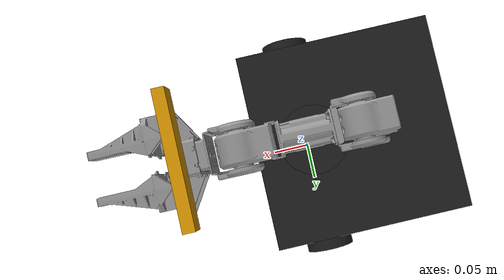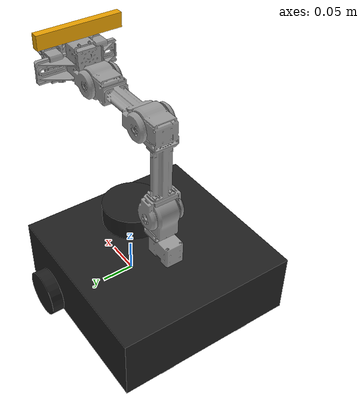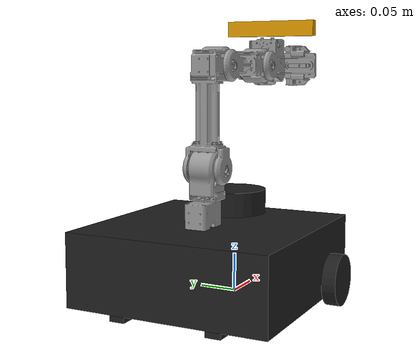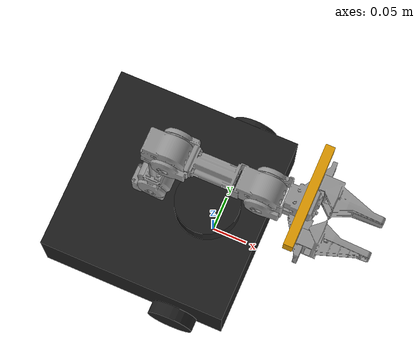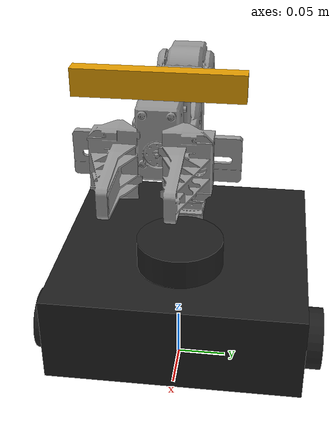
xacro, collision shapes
<?xml version="1.0"?>
<!-- Open_Manipulator Chain -->
<robot name="om_with_tb3" xmlns:xacro="http://ros.org/wiki/xacro">

  <!-- Include TurtleBot3 Waffle URDF -->
  <xacro:include filename="$(find turtlebot3_description)/urdf/turtlebot3_waffle_for_open_manipulator_with_d435.urdf.xacro" />

  <!-- Include OpenManipulator Chain Gazebo Parameter -->
  <xacro:include filename="$(find open_manipulator_with_tb3_description)/urdf/open_manipulator_with_tb3.gazebo.xacro" />

  <!-- Transmission macro -->
  <xacro:macro name="SimpleTransmission" params="joint n">
    <transmission name="tran${n}">
      <type>transmission_interface/SimpleTransmission</type>
      <joint name="${joint}">
        <hardwareInterface>hardware_interface/PositionJointInterface</hardwareInterface>
      </joint>
      <actuator name="motor${n}">
        <hardwareInterface>hardware_interface/PositionJointInterface</hardwareInterface>
        <mechanicalReduction>1</mechanicalReduction>
      </actuator>
    </transmission>
  </xacro:macro>

  <!-- Base fixed joint -->
  <joint name="base_fixed" type="fixed">
    <origin xyz="-0.092 0.0 0.091" rpy="0 0 0"/>
    <parent link="base_link"/>
    <child link="link1"/>
  </joint>

  <!-- Link 1 -->
  <link name="link1">
    <visual>
      <origin xyz="0 0 0" rpy="0 0 0"/>
      <geometry>
        <mesh filename="package://open_manipulator_description/meshes/chain_link1.stl" scale="0.001 0.001 0.001"/>
      </geometry>
      <material name="grey"/>
    </visual>

    <collision>
      <origin xyz="0 0 0" rpy="0 0 0"/>
      <geometry>
        <mesh filename="package://open_manipulator_description/meshes/chain_link1.stl" scale="0.001 0.001 0.001"/>
      </geometry>
    </collision>

     <inertial>
      <origin xyz="3.0876154e-04 0.0000000e+00 -1.2176461e-04" />
      <mass value="7.9119962e-02" />
      <inertia ixx="1.2505234e-05" ixy="0.0" ixz="-1.7855208e-07"
               iyy="2.1898364e-05" iyz="0.0"
               izz="1.9267361e-05" />
    </inertial>
  </link>

  <!-- Joint 1 -->
  <joint name="joint1" type="revolute">
    <parent link="link1"/>
    <child link="link2"/>
    <origin xyz="0.012 0.0 0.017" rpy="0 0 0"/>
    <axis xyz="0 0 1"/>
    <limit velocity="4.8" effort="1" lower="${-pi*0.9}" upper="${pi*0.9}" />
  </joint>

  <!-- Transmission 1 -->
  <xacro:SimpleTransmission n="1" joint="joint1" />

  <!--  Link 2 -->
  <link name="link2">
    <visual>
      <origin xyz="0 0 0.018" rpy="0 0 0"/>
      <geometry>
        <mesh filename="package://open_manipulator_description/meshes/chain_link2.stl" scale="0.001 0.001 0.001"/>
      </geometry>
      <material name="grey"/>
    </visual>

    <collision>
      <origin xyz="0 0 0.018" rpy="0 0 0"/>
      <geometry>
        <mesh filename="package://open_manipulator_description/meshes/chain_link2.stl" scale="0.001 0.001 0.001"/>
      </geometry>
    </collision>

     <inertial>
      <origin xyz="-3.0184870e-04 5.4043684e-04 ${0.018 + 2.9433464e-02}" />
      <mass value="9.8406837e-02" />
      <inertia ixx="3.4543422e-05" ixy="-1.6031095e-08" ixz="-3.8375155e-07"
               iyy="3.2689329e-05" iyz="2.8511935e-08"
               izz="1.8850320e-05" />
    </inertial>
  </link>

  <!--  Joint 2 -->
  <joint name="joint2" type="revolute">
    <parent link="link2"/>
    <child link="link3"/>
    <origin xyz="0.0 0.0 0.058" rpy="0 0 0"/>
    <axis xyz="0 1 0"/>
    <limit velocity="4.8" effort="1" lower="${-pi*0.57}" upper="${pi*0.5}" />
  </joint>

  <!-- Transmission 2 -->
  <xacro:SimpleTransmission n="2" joint="joint2" />

  <!--  Link 3 -->
  <link name="link3">
    <visual>
      <origin xyz="0 0 0" rpy="0 0 0"/>
      <geometry>
        <mesh filename="package://open_manipulator_description/meshes/chain_link3.stl" scale="0.001 0.001 0.001"/>
      </geometry>
      <material name="grey"/>
    </visual>

    <collision>
      <origin xyz="0 0 0" rpy="0 0 0"/>
      <geometry>
        <mesh filename="package://open_manipulator_description/meshes/chain_link3.stl" scale="0.001 0.001 0.001"/>
      </geometry>
    </collision>

     <inertial>
      <origin xyz="1.0308393e-02 3.7743363e-04 1.0170197e-01" />
      <mass value="1.3850917e-01" />
      <inertia ixx="3.3055381e-04" ixy="-9.7940978e-08" ixz="-3.8505711e-05"
               iyy="3.4290447e-04" iyz="-1.5717516e-06"
               izz="6.0346498e-05" />
    </inertial>
  </link>

  <!--  Joint 3 -->
  <joint name="joint3" type="revolute">
    <parent link="link3"/>
    <child link="link4"/>
    <origin xyz="0.024 0 0.128" rpy="0 0 0"/>
    <axis xyz="0 1 0"/>
    <limit velocity="4.8" effort="1" lower="${-pi*0.3}" upper="${pi*0.44}" />
  </joint>

  <!-- Transmission 3 -->
  <xacro:SimpleTransmission n="3" joint="joint3" />

  <!--  Link 4 -->
  <link name="link4">
    <visual>
      <origin xyz="0 0 0" rpy="0 0 0"/>
      <geometry>
        <mesh filename="package://open_manipulator_description/meshes/chain_link4.stl" scale="0.001 0.001 0.001"/>
      </geometry>
      <material name="grey"/>
    </visual>

    <collision>
      <origin xyz="0 0 0" rpy="0 0 0"/>
      <geometry>
        <mesh filename="package://open_manipulator_description/meshes/chain_link4.stl" scale="0.001 0.001 0.001"/>
      </geometry>
    </collision>

     <inertial>
      <origin xyz="9.0909590e-02 3.8929816e-04 2.2413279e-04" />
      <mass value="1.3274562e-01" />
      <inertia ixx="3.0654178e-05" ixy="-1.2764155e-06" ixz="-2.6874417e-07"
               iyy="2.4230292e-04" iyz="1.1559550e-08"
               izz="2.5155057e-04" />
    </inertial>
  </link>

  <!--  Joint 4 -->
  <joint name="joint4" type="revolute">
    <parent link="link4"/>
    <child link="link5"/>
    <origin xyz="0.124 0.0 0.0" rpy="0 0 0"/>
    <axis xyz="0 1 0"/>
    <limit velocity="4.8" effort="1" lower="${-pi*0.57}" upper="${pi*0.65}" />
  </joint>

  <!-- Transmission 4 -->
  <xacro:SimpleTransmission n="4" joint="joint4" />

  <!--  Link 5 -->
  <link name="link5">
    <visual>
      <origin xyz="0 0 0" rpy="0 0 0"/>
      <geometry>
        <mesh filename="package://open_manipulator_description/meshes/chain_link5.stl" scale="0.001 0.001 0.001"/>
      </geometry>
      <material name="grey"/>
    </visual>

    <collision>
      <origin xyz="0 0 0" rpy="0 0 0"/>
      <geometry>
        <mesh filename="package://open_manipulator_description/meshes/chain_link5.stl" scale="0.001 0.001 0.001"/>
      </geometry>
    </collision>

     <inertial>
      <origin xyz="4.4206755e-02 3.6839985e-07 8.9142216e-03" />
      <mass value="1.4327573e-01" />
      <inertia ixx="8.0870749e-05" ixy="0.0" ixz="-1.0157896e-06"
               iyy="7.5980465e-05" iyz="0.0"
               izz="9.3127351e-05" />
    </inertial>
  </link>

  <!--  Gripper link -->
  <link name="gripper_link">
    <visual>
      <origin xyz="0.0 0.0 0" rpy="0 0 0"/>
      <geometry>
        <mesh filename="package://open_manipulator_description/meshes/chain_link_grip_l.stl" scale="0.001 0.001 0.001"/>
      </geometry>
      <material name="grey"/>
    </visual>

    <collision>
      <origin xyz="0.0 0.0 0" rpy="0 0 0"/>
      <geometry>
        <mesh filename="package://open_manipulator_description/meshes/chain_link_grip_l.stl" scale="0.001 0.001 0.001"/>
      </geometry>
    </collision>

    <inertial>
      <origin xyz="0 0 0" />
      <mass value="0.017" />
      <inertia ixx="0.001" ixy="0.0" ixz="0.0"
               iyy="0.001" iyz="0.0"
               izz="0.001" />
    </inertial>

  </link>

  <!--  Gripper joint -->
  <joint name="gripper" type="prismatic">
    <parent link="link5"/>
    <child link="gripper_link"/>
    <origin xyz="0.0817 0.021 0.0" rpy="0 0 0"/>
    <axis xyz="0 1 0"/>
    <limit velocity="4.8" effort="1" lower="-0.010" upper="0.019" />
  </joint>

  <!-- Transmission 5 -->
  <xacro:SimpleTransmission n="5" joint="gripper" />

  <!--  Gripper link sub -->
  <link name="gripper_link_sub">
    <visual>
      <origin xyz="0.0 -0.0 0" rpy="0 0 0"/>
      <geometry>
        <mesh filename="package://open_manipulator_description/meshes/chain_link_grip_r.stl" scale="0.001 0.001 0.001"/>
      </geometry>
      <material name="grey"/>
    </visual>

    <collision>
      <origin xyz="0.0 -0.0 0" rpy="0 0 0"/>
      <geometry>
        <mesh filename="package://open_manipulator_description/meshes/chain_link_grip_r.stl" scale="0.001 0.001 0.001"/>
      </geometry>
    </collision>

    <inertial>
      <origin xyz="0 0 0" />
      <mass value="0.017" />
      <inertia ixx="0.001" ixy="0.0" ixz="0.0"
               iyy="0.001" iyz="0.0"
               izz="0.001" />
    </inertial>

  </link>

  <!--  Gripper joint sub -->
  <joint name="gripper_sub" type="prismatic">
    <parent link="link5"/>
    <child link="gripper_link_sub"/>
    <origin xyz="0.0817 -0.021 0" rpy="0 0 0"/>
    <axis xyz="0 -1 0"/>
    <limit velocity="4.8" effort="1" lower="-0.010" upper="0.019" />
    <mimic joint="gripper" multiplier="1"/>
  </joint>

  <!-- Transmission 6 -->
  <xacro:SimpleTransmission n="6" joint="gripper_sub" />

  <!-- end effector joint -->
  <joint name="end_effector_joint" type="fixed">
    <origin xyz="0.126 0.0 0.0" rpy="0 0 0"/>
    <parent link="link5"/>
    <child link="end_effector_link"/>
  </joint>

  <!-- end effector link -->
  <link name="end_effector_link">
    <visual>
      <origin xyz="0 0 0" rpy="0 0 0"/>
      <geometry>
        <box size="0.01 0.01 0.01" />
      </geometry>
      <material name="red"/>
     </visual>

    <inertial>
      <origin xyz="0.0 0.0 0.0" rpy="0 0 0"/>
      <mass value="0.001"/>
      <inertia ixx="0.001" ixy="0.0" ixz="0.0" iyy="0.001" iyz="0.0" izz="0.001" />
    </inertial>
  </link>

</robot>

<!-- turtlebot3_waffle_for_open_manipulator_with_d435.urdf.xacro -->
<robot name="turtlebot3_waffle_for_open_manipulator" xmlns:xacro="http://ros.org/wiki/xacro">
  <xacro:include filename="$(find turtlebot3_description)/urdf/common_properties.xacro"/>
  <xacro:include filename="$(find turtlebot3_description)/urdf/turtlebot3_waffle_with_d435.gazebo.xacro"/>

  <xacro:property name="r200_cam_rgb_px" value="0.005"/>
  <xacro:property name="r200_cam_rgb_py" value="0.018"/>
  <xacro:property name="r200_cam_rgb_pz" value="0.013"/>
  <xacro:property name="r200_cam_depth_offset" value="0.01"/>

  <link name="base_footprint"/>

  <joint name="base_joint" type="fixed">
    <parent link="base_footprint"/>
    <child link="base_link" />
    <origin xyz="0 0 0.010" rpy="0 0 0"/>
  </joint>

  <link name="base_link">
    <visual>
      <origin xyz="-0.064 0 0.0" rpy="0 0 0"/>
      <geometry>
        <mesh filename="package://turtlebot3_description/meshes/bases/waffle_base_for_open_manipulator.stl" scale="0.001 0.001 0.001"/>
      </geometry>
      <material name="light_black"/>
    </visual>

    <collision>
      <origin xyz="-0.064 0 0.047" rpy="0 0 0"/>
      <geometry>
        <box size="0.266 0.266 0.094"/>
      </geometry>
    </collision>

    <inertial>
      <origin xyz="0 0 0" rpy="0 0 0"/>
      <mass value="1.3729096e+00"/>
      <inertia ixx="8.7002718e-03" ixy="-4.7576583e-05" ixz="1.1160499e-04"
               iyy="8.6195418e-03" iyz="-3.5422299e-06"
               izz="1.4612727e-02" />
    </inertial>
  </link>

  <joint name="wheel_left_joint" type="continuous">
    <parent link="base_link"/>
    <child link="wheel_left_link"/>
    <origin xyz="0.0 0.144 0.023" rpy="-1.57 0 0"/>
    <axis xyz="0 0 1"/>
  </joint>

  <link name="wheel_left_link">
    <visual>
      <origin xyz="0 0 0" rpy="1.57 0 0"/>
      <geometry>
        <mesh filename="package://turtlebot3_description/meshes/wheels/left_tire.stl" scale="0.001 0.001 0.001"/>
      </geometry>
      <material name="dark"/>
    </visual>

    <collision>
      <origin xyz="0 0.001 0" rpy="0 0 0"/>
      <geometry>
        <cylinder length="0.018" radius="0.033"/>
      </geometry>
    </collision>

    <inertial>
      <origin xyz="0 0 0" />
      <mass value="2.8498940e-02" />
      <inertia ixx="1.1175580e-05" ixy="-4.2369783e-11" ixz="-5.9381719e-09"
               iyy="1.1192413e-05" iyz="-1.4400107e-11"
               izz="2.0712558e-05" />
      </inertial>
  </link>

  <joint name="wheel_right_joint" type="continuous">
    <parent link="base_link"/>
    <child link="wheel_right_link"/>
    <origin xyz="0.0 -0.144 0.023" rpy="-1.57 0 0"/>
    <axis xyz="0 0 1"/>
  </joint>

  <link name="wheel_right_link">
    <visual>
      <origin xyz="0 0 0" rpy="1.57 0 0"/>
      <geometry>
        <mesh filename="package://turtlebot3_description/meshes/wheels/right_tire.stl" scale="0.001 0.001 0.001"/>
      </geometry>
      <material name="dark"/>
    </visual>

    <collision>
      <origin xyz="0 0.001 0" rpy="0 0 0"/>
      <geometry>
        <cylinder length="0.018" radius="0.033"/>
      </geometry>
    </collision>

    <inertial>
      <origin xyz="0 0 0" />
      <mass value="2.8498940e-02" />
      <inertia ixx="1.1175580e-05" ixy="-4.2369783e-11" ixz="-5.9381719e-09"
               iyy="1.1192413e-05" iyz="-1.4400107e-11"
               izz="2.0712558e-05" />
      </inertial>
  </link>

  <joint name="caster_back_right_joint" type="fixed">
    <parent link="base_link"/>
    <child link="caster_back_right_link"/>
    <origin xyz="-0.177 -0.064 -0.004" rpy="-1.57 0 0"/>
  </joint>

  <link name="caster_back_right_link">
    <collision>
      <origin xyz="0 0.001 0" rpy="0 0 0"/>
      <geometry>
        <box size="0.030 0.009 0.020"/>
      </geometry>
    </collision>

    <inertial>
      <origin xyz="0 0 0" />
      <mass value="0.005" />
      <inertia ixx="0.001" ixy="0.0" ixz="0.0"
               iyy="0.001" iyz="0.0"
               izz="0.001" />
    </inertial>
  </link>

  <joint name="caster_back_left_joint" type="fixed">
    <parent link="base_link"/>
    <child link="caster_back_left_link"/>
    <origin xyz="-0.177 0.064 -0.004" rpy="-1.57 0 0"/>
  </joint>

  <link name="caster_back_left_link">
    <collision>
      <origin xyz="0 0.001 0" rpy="0 0 0"/>
      <geometry>
        <box size="0.030 0.009 0.020"/>
      </geometry>
    </collision>

    <inertial>
      <origin xyz="0 0 0" />
      <mass value="0.005" />
      <inertia ixx="0.001" ixy="0.0" ixz="0.0"
               iyy="0.001" iyz="0.0"
               izz="0.001" />
    </inertial>
  </link>

  <joint name="imu_joint" type="fixed">
    <parent link="base_link"/>
    <child link="imu_link"/>
    <origin xyz="0.0 0 0.068" rpy="0 0 0"/>
  </joint>

  <link name="imu_link"/>

  <joint name="scan_joint" type="fixed">
    <parent link="base_link"/>
    <child link="base_scan"/>
    <origin xyz="-0.024 0 0.122" rpy="0 0 0"/>
  </joint>

  <link name="base_scan">
    <visual>
      <origin xyz="0 0 0.0" rpy="0 0 0"/>
      <geometry>
        <mesh filename="package://turtlebot3_description/meshes/sensors/lds.stl" scale="0.001 0.001 0.001"/>
      </geometry>
      <material name="dark"/>
    </visual>

    <collision>
      <origin xyz="0.015 0 -0.0065" rpy="0 0 0"/>
      <geometry>
        <cylinder length="0.0315" radius="0.045"/>
      </geometry>
    </collision>

    <inertial>
      <mass value="0.114" />
      <origin xyz="0 0 0" />
      <inertia ixx="0.001" ixy="0.0" ixz="0.0"
               iyy="0.001" iyz="0.0"
               izz="0.001" />
    </inertial>
  </link>

  <joint name="camera_joint" type="fixed">
    <origin xyz="0.05 -0.065 0.043" rpy="0 0 0"/>
    <parent link="link5"/>
    <child link="camera_link"/>
  </joint>

  <link name="camera_link">
    <visual>
     <origin xyz="0 0 0" rpy="1.57 0 1.57"/>
      <geometry>
       <mesh filename="package://turtlebot3_description/meshes/sensors/r200.dae" />
      </geometry>
    </visual>
    <collision>
      <origin xyz="0.003 0.065 0.010" rpy="0 0 0"/>
      <geometry>
        <box size="0.012 0.132 0.022"/>
      </geometry>
    </collision>
  </link>

  <joint name="camera_rgb_joint" type="fixed">
    <origin xyz="${r200_cam_rgb_px} ${r200_cam_rgb_py} ${r200_cam_rgb_pz}" rpy="0 0 0"/>
    <parent link="camera_link"/>
    <child link="camera_rgb_frame"/>
  </joint>
  <link name="camera_rgb_frame"/>

  <joint name="camera_rgb_optical_joint" type="fixed">
    <origin xyz="0 0 0" rpy="-1.57 0 -1.57"/>
    <parent link="camera_rgb_frame"/>
    <child link="camera_rgb_optical_frame"/>
  </joint>
  <link name="camera_rgb_optical_frame"/>

  <joint name="camera_depth_joint" type="fixed">
    <origin xyz="${r200_cam_rgb_px} ${r200_cam_rgb_py + r200_cam_depth_offset} ${r200_cam_rgb_pz}" rpy="0 0 0"/>
    <parent link="camera_link"/>
    <child link="camera_depth_frame"/>
  </joint>
  <link name="camera_depth_frame"/>

  <joint name="camera_depth_optical_joint" type="fixed">
    <origin xyz="0 0 0" rpy="-1.57 0 -1.57"/>
    <parent link="camera_depth_frame"/>
    <child link="camera_depth_optical_frame"/>
  </joint>
  <link name="camera_depth_optical_frame"/>

</robot>
